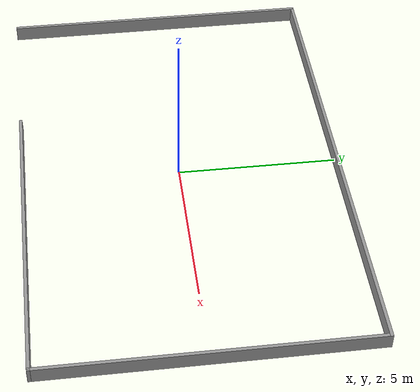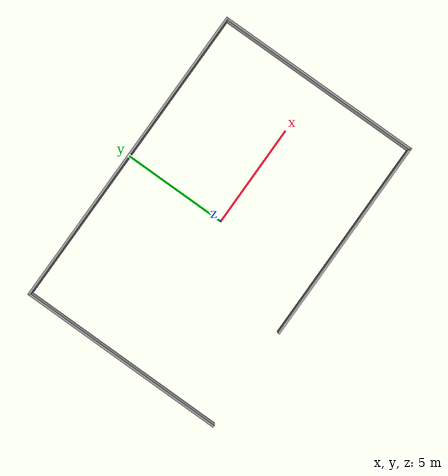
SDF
<?xml version='1.0'?>
<sdf version='1.6'>
  <model name='shape3'>
    <pose frame=''>-0.011 0.039 0 0 -0 0</pose>
    <link name='Wall_10'>
      <collision name='Wall_10_Collision'>
        <geometry>
          <box>
            <size>10 0.1 0.5</size>
          </box>
        </geometry>
        <pose frame=''>0 0 0.25 0 -0 0</pose>
      </collision>
      <visual name='Wall_10_Visual'>
        <pose frame=''>0 0 0.25 0 -0 0</pose>
        <geometry>
          <box>
            <size>10 0.1 0.5</size>
          </box>
        </geometry>
        <material>
          <script>
            <uri>file://media/materials/scripts/gazebo.material</uri>
            <name>Gazebo/Grey</name>
          </script>
          <ambient>1 1 1 1</ambient>
        </material>
        <meta>
          <layer>0</layer>
        </meta>
      </visual>
      <pose frame=''>2.5 -4.95 0 0 -0 3.14159</pose>
    </link>
    <link name='Wall_12'>
      <collision name='Wall_12_Collision'>
        <geometry>
          <box>
            <size>10 0.1 0.5</size>
          </box>
        </geometry>
        <pose frame=''>0 0 0.25 0 -0 0</pose>
      </collision>
      <visual name='Wall_12_Visual'>
        <pose frame=''>0 0 0.25 0 -0 0</pose>
        <geometry>
          <box>
            <size>10 0.1 0.5</size>
          </box>
        </geometry>
        <material>
          <script>
            <uri>file://media/materials/scripts/gazebo.material</uri>
            <name>Gazebo/Grey</name>
          </script>
          <ambient>1 1 1 1</ambient>
        </material>
        <meta>
          <layer>0</layer>
        </meta>
      </visual>
      <pose frame=''>-7.45 -0 0 0 -0 -1.5708</pose>
    </link>
    <link name='Wall_8'>
      <collision name='Wall_8_Collision'>
        <geometry>
          <box>
            <size>15 0.1 0.5</size>
          </box>
        </geometry>
        <pose frame=''>0 0 0.25 0 -0 0</pose>
      </collision>
      <visual name='Wall_8_Visual'>
        <pose frame=''>0 0 0.25 0 -0 0</pose>
        <geometry>
          <box>
            <size>15 0.1 0.5</size>
          </box>
        </geometry>
        <material>
          <script>
            <uri>file://media/materials/scripts/gazebo.material</uri>
            <name>Gazebo/Grey</name>
          </script>
          <ambient>1 1 1 1</ambient>
        </material>
        <meta>
          <layer>0</layer>
        </meta>
      </visual>
      <pose frame=''>-0 4.95 0 0 -0 0</pose>
    </link>
    <link name='Wall_9'>
      <collision name='Wall_9_Collision'>
        <geometry>
          <box>
            <size>10 0.1 0.5</size>
          </box>
        </geometry>
        <pose frame=''>0 0 0.25 0 -0 0</pose>
      </collision>
      <visual name='Wall_9_Visual'>
        <pose frame=''>0 0 0.25 0 -0 0</pose>
        <geometry>
          <box>
            <size>10 0.1 0.5</size>
          </box>
        </geometry>
        <material>
          <script>
            <uri>file://media/materials/scripts/gazebo.material</uri>
            <name>Gazebo/Grey</name>
          </script>
          <ambient>1 1 1 1</ambient>
        </material>
        <meta>
          <layer>0</layer>
        </meta>
      </visual>
      <pose frame=''>7.45 -0 0 0 -0 -1.5708</pose>
    </link>
    <static>1</static>
  </model>
</sdf>
